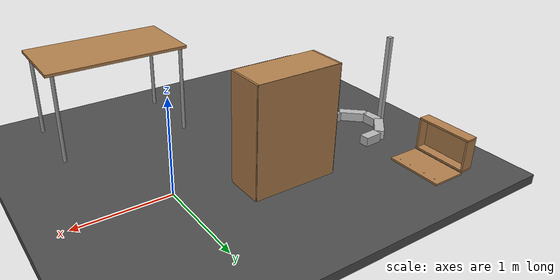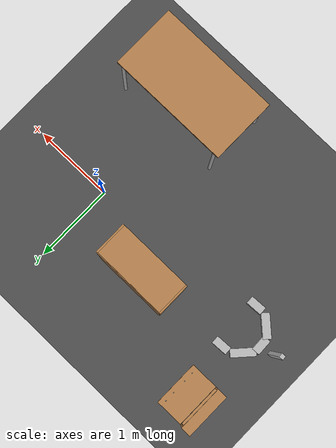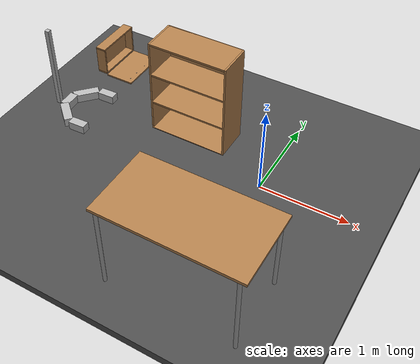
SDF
<sdf version="1.4">
 <world name="default">
  <light name="sun" type="directional">
   <pose>0 0 10 0 -0 0</pose>
   <diffuse>0.8 0.8 0.8 1</diffuse>
   <specular>0.2 0.2 0.2 1</specular>
   <attenuation>
    <range>1000</range>
    <constant>0.9</constant>
    <linear>0.01</linear>
    <quadratic>0.001</quadratic>
   </attenuation>
   <direction>-0.5 0.1 -0.9</direction>
  </light>
  <model name="ground_plane">
   <static>1</static>
   <link name="link">
    <collision name="collision">
     <geometry><plane><normal>0 0 1</normal><size>100 100</size></plane></geometry>
     <surface><friction><ode><mu>100</mu><mu2>50</mu2></ode></friction></surface>
    </collision>
    <visual name="visual">
     <cast_shadows>0</cast_shadows>
     <geometry><plane><normal>0 0 1</normal><size>100 100</size></plane></geometry>
     <material>
      <script><uri>file://media/materials/scripts/gazebo.material</uri><name>Gazebo/Grey</name></script>
     </material>
    </visual>
    <velocity_decay><linear>0</linear><angular>0</angular></velocity_decay>
   </link>
  </model>
  <physics type="ode">
   <max_step_size>0.001</max_step_size>
   <real_time_factor>1</real_time_factor>
   <real_time_update_rate>1000</real_time_update_rate>
   <gravity>0 0 -9.8</gravity>
  </physics>
  <scene><ambient>0.4 0.4 0.4 1</ambient><background>0.7 0.7 0.7 1</background><shadows>1</shadows></scene>
  <spherical_coordinates>
   <surface_model>EARTH_WGS84</surface_model>
   <latitude_deg>0</latitude_deg>
   <longitude_deg>0</longitude_deg>
   <elevation>0</elevation>
   <heading_deg>0</heading_deg>
  </spherical_coordinates>
  <model name="asphalt_plane">
   <static>1</static>
   <link name="link">
    <collision name="collision"><geometry><box><size>20 20 0.1</size></box></geometry></collision>
    <visual name="visual">
     <cast_shadows>0</cast_shadows>
     <geometry><box><size>20 20 0.1</size></box></geometry>
     <material>
      <script>
       <uri>model://asphalt_plane/materials/scripts</uri>
       <uri>model://asphalt_plane/materials/textures</uri>
       <name>vrc/asphalt</name>
      </script>
     </material>
    </visual>
    <velocity_decay><linear>0</linear><angular>0</angular></velocity_decay>
   </link>
  </model>
  <model name="bookshelf">
   <static>1</static>
   <link name="link">
    <inertial><mass>1</mass></inertial>
    <collision name="back">
     <pose>0 0.005 0.6 0 -0 0</pose>
     <geometry><box><size>0.9 0.01 1.2</size></box></geometry>
    </collision>
    <visual name="visual1">
     <pose>0 0.005 0.6 0 -0 0</pose>
     <geometry><box><size>0.9 0.01 1.2</size></box></geometry>
     <material>
      <script><uri>file://media/materials/scripts/gazebo.material</uri><name>Gazebo/Wood</name></script>
     </material>
    </visual>
    <collision name="left_side">
     <pose>0.45 -0.195 0.6 0 -0 0</pose>
     <geometry><box><size>0.02 0.4 1.2</size></box></geometry>
    </collision>
    <visual name="visual2">
     <pose>0.45 -0.195 0.6 0 -0 0</pose>
     <geometry><box><size>0.02 0.4 1.2</size></box></geometry>
     <material>
      <script><uri>file://media/materials/scripts/gazebo.material</uri><name>Gazebo/Wood</name></script>
     </material>
    </visual>
    <collision name="right_side">
     <pose>-0.45 -0.195 0.6 0 -0 0</pose>
     <geometry><box><size>0.02 0.4 1.2</size></box></geometry>
    </collision>
    <visual name="visual3">
     <pose>-0.45 -0.195 0.6 0 -0 0</pose>
     <geometry><box><size>0.02 0.4 1.2</size></box></geometry>
     <material>
      <script><uri>file://media/materials/scripts/gazebo.material</uri><name>Gazebo/Wood</name></script>
     </material>
    </visual>
    <collision name="bottom">
     <pose>0 -0.195 0.03 0 -0 0</pose>
     <geometry><box><size>0.88 0.4 0.06</size></box></geometry>
    </collision>
    <visual name="visual4">
     <pose>0 -0.195 0.03 0 -0 0</pose>
     <geometry><box><size>0.88 0.4 0.06</size></box></geometry>
     <material>
      <script><uri>file://media/materials/scripts/gazebo.material</uri><name>Gazebo/Wood</name></script>
     </material>
    </visual>
    <collision name="top">
     <pose>0 -0.195 1.19 0 -0 0</pose>
     <geometry><box><size>0.88 0.4 0.02</size></box></geometry>
    </collision>
    <visual name="visual5">
     <pose>0 -0.195 1.19 0 -0 0</pose>
     <geometry><box><size>0.88 0.4 0.02</size></box></geometry>
     <material>
      <script><uri>file://media/materials/scripts/gazebo.material</uri><name>Gazebo/Wood</name></script>
     </material>
    </visual>
    <collision name="low_shelf">
     <pose>0 -0.195 0.43 0 -0 0</pose>
     <geometry><box><size>0.88 0.4 0.02</size></box></geometry>
    </collision>
    <visual name="visual6">
     <pose>0 -0.195 0.43 0 -0 0</pose>
     <geometry><box><size>0.88 0.4 0.02</size></box></geometry>
     <material>
      <script><uri>file://media/materials/scripts/gazebo.material</uri><name>Gazebo/Wood</name></script>
     </material>
    </visual>
    <collision name="high_shelf">
     <pose>0 -0.195 0.8 0 -0 0</pose>
     <geometry><box><size>0.88 0.4 0.02</size></box></geometry>
    </collision>
    <visual name="visual7">
     <pose>0 -0.195 0.8 0 -0 0</pose>
     <geometry><box><size>0.88 0.4 0.02</size></box></geometry>
     <material>
      <script><uri>file://media/materials/scripts/gazebo.material</uri><name>Gazebo/Wood</name></script>
     </material>
    </visual>
    <velocity_decay><linear>0</linear><angular>0</angular></velocity_decay>
   </link>
   <pose>-1 0.569018 0 0 -0 0</pose>
  </model>
  <model name="wooden_case_0">
   <link name="base">
    <pose>0 0 0.024 0 -0 0</pose>
    <inertial>
     <pose>-0.0221845 0 0.171592 0 -0 0</pose>
     <mass>3.96264</mass>
     <inertia>
      <ixx>0.213536</ixx>
      <ixy>0</ixy>
      <ixz>0.000779377</ixz>
      <iyy>0.0708943</iyy>
      <iyz>0</iyz>
      <izz>0.154604</izz>
     </inertia>
    </inertial>
    <collision name="collision_back">
     <pose>-0.053975 0 0.1778 0 -0 0</pose>
     <geometry><box><size>0.01905 0.5461 0.3175</size></box></geometry>
     <surface><contact><ode><max_vel>0.1</max_vel><min_depth>0.001</min_depth></ode></contact></surface>
    </collision>
    <visual name="visual_back">
     <pose>-0.053975 0 0.1778 0 -0 0</pose>
     <geometry><box><size>0.01905 0.5461 0.3175</size></box></geometry>
     <material>
      <script><uri>file://media/materials/scripts/gazebo.material</uri><name>Gazebo/Wood</name></script>
     </material>
    </visual>
    <collision name="collision_bottom">
     <pose>0 0 0.009525 0 -0 0</pose>
     <geometry><box><size>0.127 0.5842 0.01905</size></box></geometry>
     <surface><contact><ode><max_vel>0.1</max_vel><min_depth>0.001</min_depth></ode></contact></surface>
    </collision>
    <visual name="visual_bottom">
     <pose>0 0 0.009525 0 -0 0</pose>
     <geometry><box><size>0.127 0.5842 0.01905</size></box></geometry>
     <material>
      <script><uri>file://media/materials/scripts/gazebo.material</uri><name>Gazebo/Wood</name></script>
     </material>
    </visual>
    <collision name="collision_top">
     <pose>0 0 0.346075 0 -0 0</pose>
     <geometry><box><size>0.127 0.5842 0.01905</size></box></geometry>
     <surface><contact><ode><max_vel>0.1</max_vel><min_depth>0.001</min_depth></ode></contact></surface>
    </collision>
    <visual name="visual_top">
     <pose>0 0 0.346075 0 -0 0</pose>
     <geometry><box><size>0.127 0.5842 0.01905</size></box></geometry>
     <material>
      <script><uri>file://media/materials/scripts/gazebo.material</uri><name>Gazebo/Wood</name></script>
     </material>
    </visual>
    <collision name="collision_left">
     <pose>0 -0.282575 0.1778 0 -0 0</pose>
     <geometry><box><size>0.127 0.01905 0.3175</size></box></geometry>
     <surface><contact><ode><max_vel>0.1</max_vel><min_depth>0.001</min_depth></ode></contact></surface>
    </collision>
    <visual name="visual_left">
     <pose>0 -0.282575 0.1778 0 -0 0</pose>
     <geometry><box><size>0.127 0.01905 0.3175</size></box></geometry>
     <material>
      <script><uri>file://media/materials/scripts/gazebo.material</uri><name>Gazebo/Wood</name></script>
     </material>
    </visual>
    <collision name="collision_right">
     <pose>0 0.282575 0.1778 0 -0 0</pose>
     <geometry><box><size>0.127 0.01905 0.3175</size></box></geometry>
     <surface><contact><ode><max_vel>0.1</max_vel><min_depth>0.001</min_depth></ode></contact></surface>
    </collision>
    <visual name="visual_right">
     <pose>0 0.282575 0.1778 0 -0 0</pose>
     <geometry><box><size>0.127 0.01905 0.3175</size></box></geometry>
     <material>
      <script><uri>file://media/materials/scripts/gazebo.material</uri><name>Gazebo/Wood</name></script>
     </material>
    </visual>
    <collision name="collision_block_left">
     <pose>0.0095 -0.2151 -0.012 0 -0 0</pose>
     <geometry><box><size>0.108 0.05 0.024</size></box></geometry>
     <surface><contact><ode><max_vel>0.1</max_vel><min_depth>0.001</min_depth></ode></contact></surface>
    </collision>
    <visual name="visual_block_left">
     <pose>0.0095 -0.2151 -0.012 0 -0 0</pose>
     <geometry><box><size>0.108 0.05 0.024</size></box></geometry>
     <material>
      <script><uri>file://media/materials/scripts/gazebo.material</uri><name>Gazebo/Wood</name></script>
     </material>
    </visual>
    <collision name="collision_block_right">
     <pose>0.0095 0.2151 -0.012 0 -0 0</pose>
     <geometry><box><size>0.108 0.05 0.024</size></box></geometry>
     <surface><contact><ode><max_vel>0.1</max_vel><min_depth>0.001</min_depth></ode></contact></surface>
    </collision>
    <visual name="visual_block_right">
     <pose>0.0095 0.2151 -0.012 0 -0 0</pose>
     <geometry><box><size>0.108 0.05 0.024</size></box></geometry>
     <material>
      <script><uri>file://media/materials/scripts/gazebo.material</uri><name>Gazebo/Wood</name></script>
     </material>
    </visual>
    <velocity_decay><linear>0</linear><angular>0</angular></velocity_decay>
   </link>
   <link name="lid">
    <pose>0.243775 0 0.009525 0 -0 0</pose>
    <inertial>
     <mass>1.97874</mass>
     <inertia>
      <ixx>0.0563367</ixx>
      <ixy>0</ixy>
      <ixz>0</ixz>
      <iyy>0.020911</iyy>
      <iyz>0</iyz>
      <izz>0.0771281</izz>
     </inertia>
    </inertial>
    <collision name="collision">
     <geometry><box><size>0.3556 0.5842 0.01905</size></box></geometry>
     <surface><contact><ode><max_vel>0.1</max_vel><min_depth>0.001</min_depth></ode></contact></surface>
    </collision>
    <visual name="visual">
     <geometry><box><size>0.3556 0.5842 0.01905</size></box></geometry>
     <material>
      <script><uri>file://media/materials/scripts/gazebo.material</uri><name>Gazebo/Wood</name></script>
     </material>
    </visual>
    <visual name="tee_nut_1">
     <pose>0.122 -0.216 0 0 -0 0</pose>
     <geometry><cylinder><radius>0.00635</radius><length>0.0192405</length></cylinder></geometry>
     <material>
      <script><uri>file://media/materials/scripts/gazebo.material</uri><name>Gazebo/Grey</name></script>
     </material>
    </visual>
    <visual name="tee_nut_2">
     <pose>0.122 -0.088 0 0 -0 0</pose>
     <geometry><cylinder><radius>0.00635</radius><length>0.0192405</length></cylinder></geometry>
     <material>
      <script><uri>file://media/materials/scripts/gazebo.material</uri><name>Gazebo/Grey</name></script>
     </material>
    </visual>
    <visual name="tee_nut_3">
     <pose>0.122 0.088 0 0 -0 0</pose>
     <geometry><cylinder><radius>0.00635</radius><length>0.0192405</length></cylinder></geometry>
     <material>
      <script><uri>file://media/materials/scripts/gazebo.material</uri><name>Gazebo/Grey</name></script>
     </material>
    </visual>
    <visual name="tee_nut_4">
     <pose>0.122 0.216 0 0 -0 0</pose>
     <geometry><cylinder><radius>0.00635</radius><length>0.0192405</length></cylinder></geometry>
     <material>
      <script><uri>file://media/materials/scripts/gazebo.material</uri><name>Gazebo/Grey</name></script>
     </material>
    </visual>
    <velocity_decay><linear>0</linear><angular>0</angular></velocity_decay>
   </link>
   <joint name="lid_hinge" type="revolute">
    <pose>-0.1778 0 0.01905 0 -0 0</pose>
    <parent>base</parent>
    <child>lid</child>
    <axis><xyz>0 1 0</xyz><limit><upper>0.523599</upper><lower>-1.5708</lower></limit></axis>
   </joint>
   <pose>-2.54326 0.999902 0.04989 7e-06 -0.001637 -0.000298</pose>
   <static>0</static>
  </model>
  <model name="table">
   <static>1</static>
   <link name="link">
    <collision name="surface">
     <pose>0 0 1 0 -0 0</pose>
     <geometry><box><size>1.5 0.8 0.03</size></box></geometry>
     <surface><friction><ode><mu>0.6</mu><mu2>0.6</mu2></ode></friction></surface>
    </collision>
    <visual name="visual1">
     <pose>0 0 1 0 -0 0</pose>
     <geometry><box><size>1.5 0.8 0.03</size></box></geometry>
     <material>
      <script><uri>file://media/materials/scripts/gazebo.material</uri><name>Gazebo/Wood</name></script>
     </material>
    </visual>
    <collision name="front_left_leg">
     <pose>0.68 0.38 0.5 0 -0 0</pose>
     <geometry><cylinder><radius>0.02</radius><length>1</length></cylinder></geometry>
    </collision>
    <visual name="front_left_leg">
     <pose>0.68 0.38 0.5 0 -0 0</pose>
     <geometry><cylinder><radius>0.02</radius><length>1</length></cylinder></geometry>
     <material>
      <script><uri>file://media/materials/scripts/gazebo.material</uri><name>Gazebo/Grey</name></script>
     </material>
    </visual>
    <collision name="front_right_leg">
     <pose>0.68 -0.38 0.5 0 -0 0</pose>
     <geometry><cylinder><radius>0.02</radius><length>1</length></cylinder></geometry>
    </collision>
    <visual name="front_right_leg">
     <pose>0.68 -0.38 0.5 0 -0 0</pose>
     <geometry><cylinder><radius>0.02</radius><length>1</length></cylinder></geometry>
     <material>
      <script><uri>file://media/materials/scripts/gazebo.material</uri><name>Gazebo/Grey</name></script>
     </material>
    </visual>
    <collision name="back_right_leg">
     <pose>-0.68 -0.38 0.5 0 -0 0</pose>
     <geometry><cylinder><radius>0.02</radius><length>1</length></cylinder></geometry>
    </collision>
    <visual name="back_right_leg">
     <pose>-0.68 -0.38 0.5 0 -0 0</pose>
     <geometry><cylinder><radius>0.02</radius><length>1</length></cylinder></geometry>
     <material>
      <script><uri>file://media/materials/scripts/gazebo.material</uri><name>Gazebo/Grey</name></script>
     </material>
    </visual>
    <collision name="back_left_leg">
     <pose>-0.68 0.38 0.5 0 -0 0</pose>
     <geometry><cylinder><radius>0.02</radius><length>1</length></cylinder></geometry>
    </collision>
    <visual name="back_left_leg">
     <pose>-0.68 0.38 0.5 0 -0 0</pose>
     <geometry><cylinder><radius>0.02</radius><length>1</length></cylinder></geometry>
     <material>
      <script><uri>file://media/materials/scripts/gazebo.material</uri><name>Gazebo/Grey</name></script>
     </material>
    </visual>
    <velocity_decay><linear>0</linear><angular>0</angular></velocity_decay>
   </link>
   <pose>0 -1.44136 0 0 -0 0</pose>
  </model>
  <model name="simple_gripper">
   <link name="riser">
    <pose>-0.15 0 0.5 0 -0 0</pose>
    <inertial>
     <mass>10</mass>
     <inertia><ixx>1</ixx><ixy>0</ixy><ixz>0</ixz><iyy>1</iyy><iyz>0</iyz><izz>1</izz></inertia>
    </inertial>
    <collision name="collision">
     <geometry><box><size>0.05 0.05 1</size></box></geometry>
     <surface><contact><ode><max_vel>0</max_vel></ode></contact></surface>
    </collision>
    <visual name="visual"><geometry><box><size>0.05 0.05 1</size></box></geometry></visual>
    <velocity_decay><linear>0</linear><angular>0</angular></velocity_decay>
   </link>
   <link name="palm">
    <pose>0 0 0.05 0 -0 0</pose>
    <inertial>
     <mass>0.5</mass>
     <inertia><ixx>1</ixx><ixy>0</ixy><ixz>0</ixz><iyy>1</iyy><iyz>0</iyz><izz>1</izz></inertia>
    </inertial>
    <collision name="collision">
     <geometry><box><size>0.1 0.2 0.1</size></box></geometry>
     <surface><contact><ode><max_vel>0</max_vel></ode></contact></surface>
    </collision>
    <visual name="visual"><geometry><box><size>0.1 0.2 0.1</size></box></geometry></visual>
    <velocity_decay><linear>0</linear><angular>0</angular></velocity_decay>
   </link>
   <link name="left_finger">
    <pose>0.1 0.2 0.05 0 0 -0.78539</pose>
    <inertial>
     <mass>0.1</mass>
     <inertia><ixx>1</ixx><ixy>0</ixy><ixz>0</ixz><iyy>1</iyy><iyz>0</iyz><izz>1</izz></inertia>
    </inertial>
    <collision name="collision">
     <geometry><box><size>0.1 0.3 0.1</size></box></geometry>
     <surface>
      <friction><ode><mu>0.1</mu><mu2>0</mu2></ode></friction>
      <contact><ode><max_vel>0</max_vel></ode></contact>
     </surface>
    </collision>
    <visual name="visual"><geometry><box><size>0.1 0.3 0.1</size></box></geometry></visual>
    <velocity_decay><linear>0</linear><angular>0</angular></velocity_decay>
   </link>
   <link name="left_finger_tip">
    <pose>0.336 0.3 0.05 0 -0 1.5707</pose>
    <inertial>
     <mass>0.5</mass>
     <inertia><ixx>1</ixx><ixy>0</ixy><ixz>0</ixz><iyy>1</iyy><iyz>0</iyz><izz>1</izz></inertia>
    </inertial>
    <collision name="collision">
     <geometry><box><size>0.1 0.2 0.1</size></box></geometry>
     <surface>
      <friction><ode><mu>0.1</mu><mu2>0</mu2></ode></friction>
      <contact><ode><max_vel>0</max_vel></ode></contact>
     </surface>
    </collision>
    <visual name="visual"><geometry><box><size>0.1 0.2 0.1</size></box></geometry></visual>
    <velocity_decay><linear>0</linear><angular>0</angular></velocity_decay>
   </link>
   <link name="right_finger">
    <pose>0.1 -0.2 0.05 0 -0 0.78539</pose>
    <inertial>
     <mass>0.1</mass>
     <inertia><ixx>1</ixx><ixy>0</ixy><ixz>0</ixz><iyy>1</iyy><iyz>0</iyz><izz>1</izz></inertia>
    </inertial>
    <collision name="collision">
     <geometry><box><size>0.1 0.3 0.1</size></box></geometry>
     <surface>
      <friction><ode><mu>0.1</mu><mu2>0</mu2></ode></friction>
      <contact><ode><max_vel>0</max_vel></ode></contact>
     </surface>
    </collision>
    <visual name="visual"><geometry><box><size>0.1 0.3 0.1</size></box></geometry></visual>
    <velocity_decay><linear>0</linear><angular>0</angular></velocity_decay>
   </link>
   <link name="right_finger_tip">
    <pose>0.336 -0.3 0.05 0 -0 1.5707</pose>
    <inertial>
     <mass>0.1</mass>
     <inertia><ixx>1</ixx><ixy>0</ixy><ixz>0</ixz><iyy>1</iyy><iyz>0</iyz><izz>1</izz></inertia>
    </inertial>
    <collision name="collision">
     <geometry><box><size>0.1 0.2 0.1</size></box></geometry>
     <surface>
      <friction><ode><mu>0.1</mu><mu2>0</mu2></ode></friction>
      <contact><ode><max_vel>0</max_vel></ode></contact>
     </surface>
    </collision>
    <visual name="visual"><geometry><box><size>0.1 0.2 0.1</size></box></geometry></visual>
    <velocity_decay><linear>0</linear><angular>0</angular></velocity_decay>
   </link>
   <joint name="palm_left_finger" type="revolute">
    <pose>0 -0.15 0 0 -0 0</pose>
    <child>left_finger</child>
    <parent>palm</parent>
    <axis><limit><lower>-0.8</lower><upper>0.8</upper></limit><xyz>0 0 1</xyz></axis>
   </joint>
   <joint name="left_finger_tip" type="revolute">
    <pose>0 0.1 0 0 -0 0</pose>
    <child>left_finger_tip</child>
    <parent>left_finger</parent>
    <axis><limit><lower>-0.8</lower><upper>0.8</upper></limit><xyz>0 0 1</xyz></axis>
   </joint>
   <joint name="palm_right_finger" type="revolute">
    <pose>0 0.15 0 0 -0 0</pose>
    <child>right_finger</child>
    <parent>palm</parent>
    <axis><limit><lower>-0.8</lower><upper>0.8</upper></limit><xyz>0 0 1</xyz></axis>
   </joint>
   <joint name="right_finger_tip" type="revolute">
    <pose>0 0.1 0 0 -0 0</pose>
    <child>right_finger_tip</child>
    <parent>right_finger</parent>
    <axis><limit><lower>-0.8</lower><upper>0.8</upper></limit><xyz>0 0 1</xyz></axis>
   </joint>
   <joint name="palm_riser" type="prismatic">
    <child>palm</child>
    <parent>riser</parent>
    <axis><limit><lower>0</lower><upper>0.9</upper></limit><xyz>0 0 1</xyz></axis>
   </joint>
   <gripper name="simple_gripper">
    <grasp_check>
     <detach_steps>40</detach_steps>
     <attach_steps>20</attach_steps>
     <min_contact_count>2</min_contact_count>
    </grasp_check>
    <gripper_link>right_finger</gripper_link>
    <gripper_link>right_finger_tip</gripper_link>
    <gripper_link>left_finger</gripper_link>
    <gripper_link>left_finger_tip</gripper_link>
    <palm_link>palm</palm_link>
   </gripper>
   <pose>-2.51735 0.014044 0.049999 3e-06 8e-06 0.043547</pose>
   <static>0</static>
  </model>
 </world>
</sdf>
